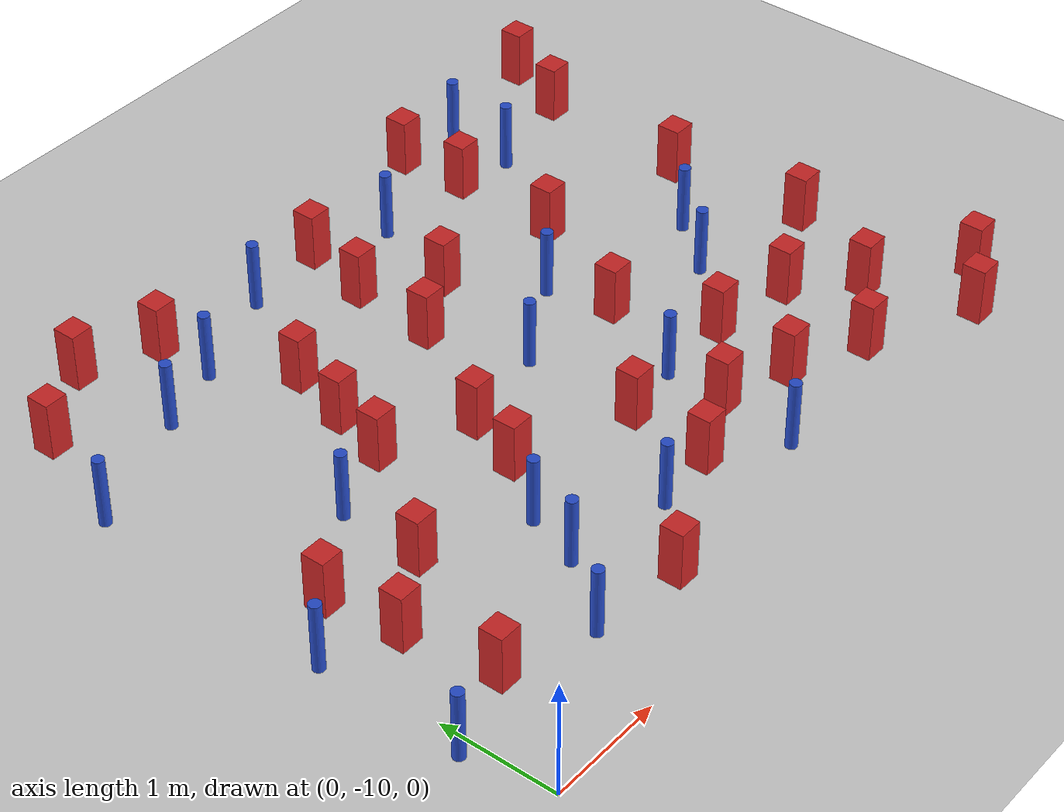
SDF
<sdf version="1.6">
 <world name="default">
  <model name="ground_plane">
   <static>1</static>
   <link name="link">
    <collision name="collision">
     <geometry><plane><normal>0 0 1</normal><size>100 100</size></plane></geometry>
     <surface><friction><ode><mu>100</mu><mu2>50</mu2></ode></friction></surface>
    </collision>
    <visual name="visual">
     <cast_shadows>0</cast_shadows>
     <geometry><plane><normal>0 0 1</normal><size>100 100</size></plane></geometry>
     <material>
      <ambient>1.0 1.0 1.0 1.0</ambient>
      <diffuse>0.8 0.8 0.8 1.0</diffuse>
      <specular>0.01 0.01 0.01 1.000000</specular>
     </material>
    </visual>
   </link>
  </model>
  <model name="pole_obstacle3">
   <static>true</static>
   <pose>3.8869717696 -8.00408965055 7.38925637345e-09 -8.47170692795e-08 1.24976764645e-08 -1.74513093041e-07</pose>
   <link name="link">
    <pose>0 0 0.3 0 -0 0</pose>
    <inertial>
     <mass>1</mass>
     <inertia><ixx>0.145833</ixx><ixy>0</ixy><ixz>0</ixz><iyy>0.145833</iyy><iyz>0</iyz><izz>0.125</izz></inertia>
    </inertial>
    <collision name="collision">
     <geometry><cylinder><radius>0.05</radius><length>.6</length></cylinder></geometry>
    </collision>
    <visual name="visual">
     <geometry><cylinder><radius>0.05</radius><length>.6</length></cylinder></geometry>
     <material>
      <script><name>Gazebo/Blue</name><uri>file://media/materials/scripts/gazebo.material</uri></script>
     </material>
    </visual>
   </link>
  </model>
  <model name="square_post_obstacle4">
   <static>true</static>
   <pose>3.07919721968 -6.26653733006 1.91545236811e-07 -7.35059704564e-06 1.12565212e-07 2.39332434364e-05</pose>
   <link name="link">
    <pose>0 0 0.25 0 -0 0</pose>
    <inertial>
     <mass>100</mass>
     <inertia>
      <ixx>0.166667</ixx>
      <ixy>0</ixy>
      <ixz>0</ixz>
      <iyy>0.166667</iyy>
      <iyz>0</iyz>
      <izz>0.166667</izz>
     </inertia>
    </inertial>
    <collision name="collision"><geometry><box><size>.2 .2 .5</size></box></geometry></collision>
    <visual name="visual">
     <geometry><box><size>.2 .2 .5</size></box></geometry>
     <material>
      <script><name>Gazebo/Red</name><uri>file://media/materials/scripts/gazebo.material</uri></script>
     </material>
    </visual>
   </link>
  </model>
  <model name="square_post_obstacle5">
   <static>true</static>
   <pose>6.44324664143 -4.46390891324 1.91545236811e-07 -7.35059704564e-06 1.12565212e-07 2.39332434364e-05</pose>
   <link name="link">
    <pose>0 0 0.25 0 -0 0</pose>
    <inertial>
     <mass>100</mass>
     <inertia>
      <ixx>0.166667</ixx>
      <ixy>0</ixy>
      <ixz>0</ixz>
      <iyy>0.166667</iyy>
      <iyz>0</iyz>
      <izz>0.166667</izz>
     </inertia>
    </inertial>
    <collision name="collision"><geometry><box><size>.2 .2 .5</size></box></geometry></collision>
    <visual name="visual">
     <geometry><box><size>.2 .2 .5</size></box></geometry>
     <material>
      <script><name>Gazebo/Red</name><uri>file://media/materials/scripts/gazebo.material</uri></script>
     </material>
    </visual>
   </link>
  </model>
  <model name="square_post_obstacle10">
   <static>true</static>
   <pose>2.29358282562 -7.76249303104 1.91545236811e-07 -7.35059704564e-06 1.12565212e-07 2.39332434364e-05</pose>
   <link name="link">
    <pose>0 0 0.25 0 -0 0</pose>
    <inertial>
     <mass>100</mass>
     <inertia>
      <ixx>0.166667</ixx>
      <ixy>0</ixy>
      <ixz>0</ixz>
      <iyy>0.166667</iyy>
      <iyz>0</iyz>
      <izz>0.166667</izz>
     </inertia>
    </inertial>
    <collision name="collision"><geometry><box><size>.2 .2 .5</size></box></geometry></collision>
    <visual name="visual">
     <geometry><box><size>.2 .2 .5</size></box></geometry>
     <material>
      <script><name>Gazebo/Red</name><uri>file://media/materials/scripts/gazebo.material</uri></script>
     </material>
    </visual>
   </link>
  </model>
  <model name="square_post_obstacle17">
   <static>true</static>
   <pose>6.01711211781 -9.42610110597 1.91545236811e-07 -7.35059704564e-06 1.12565212e-07 2.39332434364e-05</pose>
   <link name="link">
    <pose>0 0 0.25 0 -0 0</pose>
    <inertial>
     <mass>100</mass>
     <inertia>
      <ixx>0.166667</ixx>
      <ixy>0</ixy>
      <ixz>0</ixz>
      <iyy>0.166667</iyy>
      <iyz>0</iyz>
      <izz>0.166667</izz>
     </inertia>
    </inertial>
    <collision name="collision"><geometry><box><size>.2 .2 .5</size></box></geometry></collision>
    <visual name="visual">
     <geometry><box><size>.2 .2 .5</size></box></geometry>
     <material>
      <script><name>Gazebo/Red</name><uri>file://media/materials/scripts/gazebo.material</uri></script>
     </material>
    </visual>
   </link>
  </model>
  <model name="square_post_obstacle22">
   <static>true</static>
   <pose>4.79873285361 -5.18965610386 1.91545236811e-07 -7.35059704564e-06 1.12565212e-07 2.39332434364e-05</pose>
   <link name="link">
    <pose>0 0 0.25 0 -0 0</pose>
    <inertial>
     <mass>100</mass>
     <inertia>
      <ixx>0.166667</ixx>
      <ixy>0</ixy>
      <ixz>0</ixz>
      <iyy>0.166667</iyy>
      <iyz>0</iyz>
      <izz>0.166667</izz>
     </inertia>
    </inertial>
    <collision name="collision"><geometry><box><size>.2 .2 .5</size></box></geometry></collision>
    <visual name="visual">
     <geometry><box><size>.2 .2 .5</size></box></geometry>
     <material>
      <script><name>Gazebo/Red</name><uri>file://media/materials/scripts/gazebo.material</uri></script>
     </material>
    </visual>
   </link>
  </model>
  <model name="square_post_obstacle27">
   <static>true</static>
   <pose>4.55266092391 -7.9938036275 1.91545236811e-07 -7.35059704564e-06 1.12565212e-07 2.39332434364e-05</pose>
   <link name="link">
    <pose>0 0 0.25 0 -0 0</pose>
    <inertial>
     <mass>100</mass>
     <inertia>
      <ixx>0.166667</ixx>
      <ixy>0</ixy>
      <ixz>0</ixz>
      <iyy>0.166667</iyy>
      <iyz>0</iyz>
      <izz>0.166667</izz>
     </inertia>
    </inertial>
    <collision name="collision"><geometry><box><size>.2 .2 .5</size></box></geometry></collision>
    <visual name="visual">
     <geometry><box><size>.2 .2 .5</size></box></geometry>
     <material>
      <script><name>Gazebo/Red</name><uri>file://media/materials/scripts/gazebo.material</uri></script>
     </material>
    </visual>
   </link>
  </model>
  <model name="square_post_obstacle29">
   <static>true</static>
   <pose>6.48298378623 -9.11429246544 1.91545236811e-07 -7.35059704564e-06 1.12565212e-07 2.39332434364e-05</pose>
   <link name="link">
    <pose>0 0 0.25 0 -0 0</pose>
    <inertial>
     <mass>100</mass>
     <inertia>
      <ixx>0.166667</ixx>
      <ixy>0</ixy>
      <ixz>0</ixz>
      <iyy>0.166667</iyy>
      <iyz>0</iyz>
      <izz>0.166667</izz>
     </inertia>
    </inertial>
    <collision name="collision"><geometry><box><size>.2 .2 .5</size></box></geometry></collision>
    <visual name="visual">
     <geometry><box><size>.2 .2 .5</size></box></geometry>
     <material>
      <script><name>Gazebo/Red</name><uri>file://media/materials/scripts/gazebo.material</uri></script>
     </material>
    </visual>
   </link>
  </model>
  <model name="pole_obstacle20">
   <static>true</static>
   <pose>1.93945871821 -8.24258649022 7.38925637345e-09 -8.47170692798e-08 1.24976764881e-08 -1.74513093027e-07</pose>
   <link name="link">
    <pose>0 0 0.3 0 -0 0</pose>
    <inertial>
     <mass>1</mass>
     <inertia><ixx>0.145833</ixx><ixy>0</ixy><ixz>0</ixz><iyy>0.145833</iyy><iyz>0</iyz><izz>0.125</izz></inertia>
    </inertial>
    <collision name="collision">
     <geometry><cylinder><radius>0.05</radius><length>.6</length></cylinder></geometry>
    </collision>
    <visual name="visual">
     <geometry><cylinder><radius>0.05</radius><length>.6</length></cylinder></geometry>
     <material>
      <script><name>Gazebo/Blue</name><uri>file://media/materials/scripts/gazebo.material</uri></script>
     </material>
    </visual>
   </link>
  </model>
  <model name="pole_obstacle23">
   <static>true</static>
   <pose>5.51537465679 -6.94875715952 7.38925637345e-09 -8.47170692796e-08 1.24976764786e-08 -1.74513093032e-07</pose>
   <link name="link">
    <pose>0 0 0.3 0 -0 0</pose>
    <inertial>
     <mass>1</mass>
     <inertia><ixx>0.145833</ixx><ixy>0</ixy><ixz>0</ixz><iyy>0.145833</iyy><iyz>0</iyz><izz>0.125</izz></inertia>
    </inertial>
    <collision name="collision">
     <geometry><cylinder><radius>0.05</radius><length>.6</length></cylinder></geometry>
    </collision>
    <visual name="visual">
     <geometry><cylinder><radius>0.05</radius><length>.6</length></cylinder></geometry>
     <material>
      <script><name>Gazebo/Blue</name><uri>file://media/materials/scripts/gazebo.material</uri></script>
     </material>
    </visual>
   </link>
  </model>
  <model name="pole_obstacle27">
   <static>true</static>
   <pose>1.77050154977 -8.71821364549 7.38925637345e-09 -8.47170692798e-08 1.24976764881e-08 -1.74513093027e-07</pose>
   <link name="link">
    <pose>0 0 0.3 0 -0 0</pose>
    <inertial>
     <mass>1</mass>
     <inertia><ixx>0.145833</ixx><ixy>0</ixy><ixz>0</ixz><iyy>0.145833</iyy><iyz>0</iyz><izz>0.125</izz></inertia>
    </inertial>
    <collision name="collision">
     <geometry><cylinder><radius>0.05</radius><length>.6</length></cylinder></geometry>
    </collision>
    <visual name="visual">
     <geometry><cylinder><radius>0.05</radius><length>.6</length></cylinder></geometry>
     <material>
      <script><name>Gazebo/Blue</name><uri>file://media/materials/scripts/gazebo.material</uri></script>
     </material>
    </visual>
   </link>
  </model>
  <model name="pole_obstacle30">
   <static>true</static>
   <pose>5.12696875734 -7.40442507341 7.38925637345e-09 -8.47170692796e-08 1.24976764786e-08 -1.74513093032e-07</pose>
   <link name="link">
    <pose>0 0 0.3 0 -0 0</pose>
    <inertial>
     <mass>1</mass>
     <inertia><ixx>0.145833</ixx><ixy>0</ixy><ixz>0</ixz><iyy>0.145833</iyy><iyz>0</iyz><izz>0.125</izz></inertia>
    </inertial>
    <collision name="collision">
     <geometry><cylinder><radius>0.05</radius><length>.6</length></cylinder></geometry>
    </collision>
    <visual name="visual">
     <geometry><cylinder><radius>0.05</radius><length>.6</length></cylinder></geometry>
     <material>
      <script><name>Gazebo/Blue</name><uri>file://media/materials/scripts/gazebo.material</uri></script>
     </material>
    </visual>
   </link>
  </model>
  <model name="pole_obstacle41">
   <static>true</static>
   <pose>5.31933902041 -4.66655449276 7.38925637345e-09 -8.47170692796e-08 1.24976764786e-08 -1.74513093032e-07</pose>
   <link name="link">
    <pose>0 0 0.3 0 -0 0</pose>
    <inertial>
     <mass>1</mass>
     <inertia><ixx>0.145833</ixx><ixy>0</ixy><ixz>0</ixz><iyy>0.145833</iyy><iyz>0</iyz><izz>0.125</izz></inertia>
    </inertial>
    <collision name="collision">
     <geometry><cylinder><radius>0.05</radius><length>.6</length></cylinder></geometry>
    </collision>
    <visual name="visual">
     <geometry><cylinder><radius>0.05</radius><length>.6</length></cylinder></geometry>
     <material>
      <script><name>Gazebo/Blue</name><uri>file://media/materials/scripts/gazebo.material</uri></script>
     </material>
    </visual>
   </link>
  </model>
  <model name="square_post_obstacle42">
   <static>true</static>
   <pose>4.77084175462 -4.58332912913 1.91545236811e-07 -7.35059704564e-06 1.12565212e-07 2.39332434364e-05</pose>
   <link name="link">
    <pose>0 0 0.25 0 -0 0</pose>
    <inertial>
     <mass>100</mass>
     <inertia>
      <ixx>0.166667</ixx>
      <ixy>0</ixy>
      <ixz>0</ixz>
      <iyy>0.166667</iyy>
      <iyz>0</iyz>
      <izz>0.166667</izz>
     </inertia>
    </inertial>
    <collision name="collision"><geometry><box><size>.2 .2 .5</size></box></geometry></collision>
    <visual name="visual">
     <geometry><box><size>.2 .2 .5</size></box></geometry>
     <material>
      <script><name>Gazebo/Red</name><uri>file://media/materials/scripts/gazebo.material</uri></script>
     </material>
    </visual>
   </link>
  </model>
  <model name="square_post_obstacle45">
   <static>true</static>
   <pose>1.08597140205 -7.88172179054 1.91545236811e-07 -7.35059704564e-06 1.12565212e-07 2.39332434364e-05</pose>
   <link name="link">
    <pose>0 0 0.25 0 -0 0</pose>
    <inertial>
     <mass>100</mass>
     <inertia>
      <ixx>0.166667</ixx>
      <ixy>0</ixy>
      <ixz>0</ixz>
      <iyy>0.166667</iyy>
      <iyz>0</iyz>
      <izz>0.166667</izz>
     </inertia>
    </inertial>
    <collision name="collision"><geometry><box><size>.2 .2 .5</size></box></geometry></collision>
    <visual name="visual">
     <geometry><box><size>.2 .2 .5</size></box></geometry>
     <material>
      <script><name>Gazebo/Red</name><uri>file://media/materials/scripts/gazebo.material</uri></script>
     </material>
    </visual>
   </link>
  </model>
  <model name="square_post_obstacle48">
   <static>true</static>
   <pose>1.75514652168 -6.92476164074 1.91545236811e-07 -7.35059704564e-06 1.12565212e-07 2.39332434364e-05</pose>
   <link name="link">
    <pose>0 0 0.25 0 -0 0</pose>
    <inertial>
     <mass>100</mass>
     <inertia>
      <ixx>0.166667</ixx>
      <ixy>0</ixy>
      <ixz>0</ixz>
      <iyy>0.166667</iyy>
      <iyz>0</iyz>
      <izz>0.166667</izz>
     </inertia>
    </inertial>
    <collision name="collision"><geometry><box><size>.2 .2 .5</size></box></geometry></collision>
    <visual name="visual">
     <geometry><box><size>.2 .2 .5</size></box></geometry>
     <material>
      <script><name>Gazebo/Red</name><uri>file://media/materials/scripts/gazebo.material</uri></script>
     </material>
    </visual>
   </link>
  </model>
  <model name="pole_obstacle48">
   <static>true</static>
   <pose>2.67402947778 -8.8718139059 7.38925637345e-09 -8.47170692793e-08 1.24976764408e-08 -1.74513093041e-07</pose>
   <link name="link">
    <pose>0 0 0.3 0 -0 0</pose>
    <inertial>
     <mass>1</mass>
     <inertia><ixx>0.145833</ixx><ixy>0</ixy><ixz>0</ixz><iyy>0.145833</iyy><iyz>0</iyz><izz>0.125</izz></inertia>
    </inertial>
    <collision name="collision">
     <geometry><cylinder><radius>0.05</radius><length>.6</length></cylinder></geometry>
    </collision>
    <visual name="visual">
     <geometry><cylinder><radius>0.05</radius><length>.6</length></cylinder></geometry>
     <material>
      <script><name>Gazebo/Blue</name><uri>file://media/materials/scripts/gazebo.material</uri></script>
     </material>
    </visual>
   </link>
  </model>
  <model name="square_post_obstacle60">
   <static>true</static>
   <pose>3.67688476668 -5.931533268 1.91545236811e-07 -7.35059704564e-06 1.12565212e-07 2.39332434364e-05</pose>
   <link name="link">
    <pose>0 0 0.25 0 -0 0</pose>
    <inertial>
     <mass>100</mass>
     <inertia>
      <ixx>0.166667</ixx>
      <ixy>0</ixy>
      <ixz>0</ixz>
      <iyy>0.166667</iyy>
      <iyz>0</iyz>
      <izz>0.166667</izz>
     </inertia>
    </inertial>
    <collision name="collision"><geometry><box><size>.2 .2 .5</size></box></geometry></collision>
    <visual name="visual">
     <geometry><box><size>.2 .2 .5</size></box></geometry>
     <material>
      <script><name>Gazebo/Red</name><uri>file://media/materials/scripts/gazebo.material</uri></script>
     </material>
    </visual>
   </link>
  </model>
  <model name="pole_obstacle56">
   <static>true</static>
   <pose>3.79255109052 -9.2062364247 7.38925637345e-09 -8.47170692793e-08 1.24976764408e-08 -1.74513093041e-07</pose>
   <link name="link">
    <pose>0 0 0.3 0 -0 0</pose>
    <inertial>
     <mass>1</mass>
     <inertia><ixx>0.145833</ixx><ixy>0</ixy><ixz>0</ixz><iyy>0.145833</iyy><iyz>0</iyz><izz>0.125</izz></inertia>
    </inertial>
    <collision name="collision">
     <geometry><cylinder><radius>0.05</radius><length>.6</length></cylinder></geometry>
    </collision>
    <visual name="visual">
     <geometry><cylinder><radius>0.05</radius><length>.6</length></cylinder></geometry>
     <material>
      <script><name>Gazebo/Blue</name><uri>file://media/materials/scripts/gazebo.material</uri></script>
     </material>
    </visual>
   </link>
  </model>
  <model name="pole_obstacle64">
   <static>true</static>
   <pose>2.56649638465 -4.94191899076 7.38925637345e-09 -8.47170692798e-08 1.24976765033e-08 -1.74513093019e-07</pose>
   <link name="link">
    <pose>0 0 0.3 0 -0 0</pose>
    <inertial>
     <mass>1</mass>
     <inertia><ixx>0.145833</ixx><ixy>0</ixy><ixz>0</ixz><iyy>0.145833</iyy><iyz>0</iyz><izz>0.125</izz></inertia>
    </inertial>
    <collision name="collision">
     <geometry><cylinder><radius>0.05</radius><length>.6</length></cylinder></geometry>
    </collision>
    <visual name="visual">
     <geometry><cylinder><radius>0.05</radius><length>.6</length></cylinder></geometry>
     <material>
      <script><name>Gazebo/Blue</name><uri>file://media/materials/scripts/gazebo.material</uri></script>
     </material>
    </visual>
   </link>
  </model>
  <model name="square_post_obstacle69">
   <static>true</static>
   <pose>1.67292265116 -4.77146526882 1.91545236811e-07 -7.35059704564e-06 1.12565212e-07 2.39332434364e-05</pose>
   <link name="link">
    <pose>0 0 0.25 0 -0 0</pose>
    <inertial>
     <mass>100</mass>
     <inertia>
      <ixx>0.166667</ixx>
      <ixy>0</ixy>
      <ixz>0</ixz>
      <iyy>0.166667</iyy>
      <iyz>0</iyz>
      <izz>0.166667</izz>
     </inertia>
    </inertial>
    <collision name="collision"><geometry><box><size>.2 .2 .5</size></box></geometry></collision>
    <visual name="visual">
     <geometry><box><size>.2 .2 .5</size></box></geometry>
     <material>
      <script><name>Gazebo/Red</name><uri>file://media/materials/scripts/gazebo.material</uri></script>
     </material>
    </visual>
   </link>
  </model>
  <model name="pole_obstacle70">
   <static>true</static>
   <pose>4.12975500919 -6.62695395153 7.38925637345e-09 -8.47170692796e-08 1.24976764786e-08 -1.74513093032e-07</pose>
   <link name="link">
    <pose>0 0 0.3 0 -0 0</pose>
    <inertial>
     <mass>1</mass>
     <inertia><ixx>0.145833</ixx><ixy>0</ixy><ixz>0</ixz><iyy>0.145833</iyy><iyz>0</iyz><izz>0.125</izz></inertia>
    </inertial>
    <collision name="collision">
     <geometry><cylinder><radius>0.05</radius><length>.6</length></cylinder></geometry>
    </collision>
    <visual name="visual">
     <geometry><cylinder><radius>0.05</radius><length>.6</length></cylinder></geometry>
     <material>
      <script><name>Gazebo/Blue</name><uri>file://media/materials/scripts/gazebo.material</uri></script>
     </material>
    </visual>
   </link>
  </model>
  <model name="pole_obstacle72">
   <static>true</static>
   <pose>5.31551510618 -5.24906580872 7.38925637345e-09 -8.47170692796e-08 1.24976764786e-08 -1.74513093032e-07</pose>
   <link name="link">
    <pose>0 0 0.3 0 -0 0</pose>
    <inertial>
     <mass>1</mass>
     <inertia><ixx>0.145833</ixx><ixy>0</ixy><ixz>0</ixz><iyy>0.145833</iyy><iyz>0</iyz><izz>0.125</izz></inertia>
    </inertial>
    <collision name="collision">
     <geometry><cylinder><radius>0.05</radius><length>.6</length></cylinder></geometry>
    </collision>
    <visual name="visual">
     <geometry><cylinder><radius>0.05</radius><length>.6</length></cylinder></geometry>
     <material>
      <script><name>Gazebo/Blue</name><uri>file://media/materials/scripts/gazebo.material</uri></script>
     </material>
    </visual>
   </link>
  </model>
  <model name="pole_obstacle74">
   <static>true</static>
   <pose>3.34582866779 -7.08030157012 7.38925637345e-09 -8.47170692798e-08 1.24976765033e-08 -1.74513093019e-07</pose>
   <link name="link">
    <pose>0 0 0.3 0 -0 0</pose>
    <inertial>
     <mass>1</mass>
     <inertia><ixx>0.145833</ixx><ixy>0</ixy><ixz>0</ixz><iyy>0.145833</iyy><iyz>0</iyz><izz>0.125</izz></inertia>
    </inertial>
    <collision name="collision">
     <geometry><cylinder><radius>0.05</radius><length>.6</length></cylinder></geometry>
    </collision>
    <visual name="visual">
     <geometry><cylinder><radius>0.05</radius><length>.6</length></cylinder></geometry>
     <material>
      <script><name>Gazebo/Blue</name><uri>file://media/materials/scripts/gazebo.material</uri></script>
     </material>
    </visual>
   </link>
  </model>
  <model name="pole_obstacle75">
   <static>true</static>
   <pose>1.13440905751 -7.14215803802 7.38925637345e-09 -8.47170692799e-08 1.24976765033e-08 -1.74513093018e-07</pose>
   <link name="link">
    <pose>0 0 0.3 0 -0 0</pose>
    <inertial>
     <mass>1</mass>
     <inertia><ixx>0.145833</ixx><ixy>0</ixy><ixz>0</ixz><iyy>0.145833</iyy><iyz>0</iyz><izz>0.125</izz></inertia>
    </inertial>
    <collision name="collision">
     <geometry><cylinder><radius>0.05</radius><length>.6</length></cylinder></geometry>
    </collision>
    <visual name="visual">
     <geometry><cylinder><radius>0.05</radius><length>.6</length></cylinder></geometry>
     <material>
      <script><name>Gazebo/Blue</name><uri>file://media/materials/scripts/gazebo.material</uri></script>
     </material>
    </visual>
   </link>
  </model>
  <model name="pole_obstacle83">
   <static>true</static>
   <pose>3.93082689863 -5.12274854073 7.38925637345e-09 -8.47170692798e-08 1.24976765033e-08 -1.74513093019e-07</pose>
   <link name="link">
    <pose>0 0 0.3 0 -0 0</pose>
    <inertial>
     <mass>1</mass>
     <inertia><ixx>0.145833</ixx><ixy>0</ixy><ixz>0</ixz><iyy>0.145833</iyy><iyz>0</iyz><izz>0.125</izz></inertia>
    </inertial>
    <collision name="collision">
     <geometry><cylinder><radius>0.05</radius><length>.6</length></cylinder></geometry>
    </collision>
    <visual name="visual">
     <geometry><cylinder><radius>0.05</radius><length>.6</length></cylinder></geometry>
     <material>
      <script><name>Gazebo/Blue</name><uri>file://media/materials/scripts/gazebo.material</uri></script>
     </material>
    </visual>
   </link>
  </model>
  <model name="pole_obstacle92">
   <static>true</static>
   <pose>0.0189825552733 -5.85464212197 7.38925637345e-09 -8.471706928e-08 1.24976765089e-08 -1.74513093016e-07</pose>
   <link name="link">
    <pose>0 0 0.3 0 -0 0</pose>
    <inertial>
     <mass>1</mass>
     <inertia><ixx>0.145833</ixx><ixy>0</ixy><ixz>0</ixz><iyy>0.145833</iyy><iyz>0</iyz><izz>0.125</izz></inertia>
    </inertial>
    <collision name="collision">
     <geometry><cylinder><radius>0.05</radius><length>.6</length></cylinder></geometry>
    </collision>
    <visual name="visual">
     <geometry><cylinder><radius>0.05</radius><length>.6</length></cylinder></geometry>
     <material>
      <script><name>Gazebo/Blue</name><uri>file://media/materials/scripts/gazebo.material</uri></script>
     </material>
    </visual>
   </link>
  </model>
  <model name="square_post_obstacle88">
   <static>true</static>
   <pose>4.76073305607 -6.1354554053 1.91545236811e-07 -7.35059704564e-06 1.12565212e-07 2.39332434364e-05</pose>
   <link name="link">
    <pose>0 0 0.25 0 -0 0</pose>
    <inertial>
     <mass>100</mass>
     <inertia>
      <ixx>0.166667</ixx>
      <ixy>0</ixy>
      <ixz>0</ixz>
      <iyy>0.166667</iyy>
      <iyz>0</iyz>
      <izz>0.166667</izz>
     </inertia>
    </inertial>
    <collision name="collision"><geometry><box><size>.2 .2 .5</size></box></geometry></collision>
    <visual name="visual">
     <geometry><box><size>.2 .2 .5</size></box></geometry>
     <material>
      <script><name>Gazebo/Red</name><uri>file://media/materials/scripts/gazebo.material</uri></script>
     </material>
    </visual>
   </link>
  </model>
  <model name="pole_obstacle109">
   <static>true</static>
   <pose>-0.142745094551 -9.28714269157 7.38925637345e-09 -8.47170692797e-08 1.249767648e-08 -1.74513093033e-07</pose>
   <link name="link">
    <pose>0 0 0.3 0 -0 0</pose>
    <inertial>
     <mass>1</mass>
     <inertia><ixx>0.145833</ixx><ixy>0</ixy><ixz>0</ixz><iyy>0.145833</iyy><iyz>0</iyz><izz>0.125</izz></inertia>
    </inertial>
    <collision name="collision">
     <geometry><cylinder><radius>0.05</radius><length>.6</length></cylinder></geometry>
    </collision>
    <visual name="visual">
     <geometry><cylinder><radius>0.05</radius><length>.6</length></cylinder></geometry>
     <material>
      <script><name>Gazebo/Blue</name><uri>file://media/materials/scripts/gazebo.material</uri></script>
     </material>
    </visual>
   </link>
  </model>
  <model name="pole_obstacle129">
   <static>true</static>
   <pose>-0.113783432798 -8.0323028779 7.38925637345e-09 -8.47170692807e-08 1.24976765528e-08 -1.74513093002e-07</pose>
   <link name="link">
    <pose>0 0 0.3 0 -0 0</pose>
    <inertial>
     <mass>1</mass>
     <inertia><ixx>0.145833</ixx><ixy>0</ixy><ixz>0</ixz><iyy>0.145833</iyy><iyz>0</iyz><izz>0.125</izz></inertia>
    </inertial>
    <collision name="collision">
     <geometry><cylinder><radius>0.05</radius><length>.6</length></cylinder></geometry>
    </collision>
    <visual name="visual">
     <geometry><cylinder><radius>0.05</radius><length>.6</length></cylinder></geometry>
     <material>
      <script><name>Gazebo/Blue</name><uri>file://media/materials/scripts/gazebo.material</uri></script>
     </material>
    </visual>
   </link>
  </model>
  <model name="square_post_obstacle114">
   <static>true</static>
   <pose>5.2841470193 -8.11014872545 1.91545236811e-07 -7.35059704564e-06 1.12565212e-07 2.39332434364e-05</pose>
   <link name="link">
    <pose>0 0 0.25 0 -0 0</pose>
    <inertial>
     <mass>100</mass>
     <inertia>
      <ixx>0.166667</ixx>
      <ixy>0</ixy>
      <ixz>0</ixz>
      <iyy>0.166667</iyy>
      <iyz>0</iyz>
      <izz>0.166667</izz>
     </inertia>
    </inertial>
    <collision name="collision"><geometry><box><size>.2 .2 .5</size></box></geometry></collision>
    <visual name="visual">
     <geometry><box><size>.2 .2 .5</size></box></geometry>
     <material>
      <script><name>Gazebo/Red</name><uri>file://media/materials/scripts/gazebo.material</uri></script>
     </material>
    </visual>
   </link>
  </model>
  <model name="pole_obstacle135">
   <static>true</static>
   <pose>1.08419162479 -5.46342337874 7.38925637345e-09 -8.47170692799e-08 1.24976765033e-08 -1.74513093018e-07</pose>
   <link name="link">
    <pose>0 0 0.3 0 -0 0</pose>
    <inertial>
     <mass>1</mass>
     <inertia><ixx>0.145833</ixx><ixy>0</ixy><ixz>0</ixz><iyy>0.145833</iyy><iyz>0</iyz><izz>0.125</izz></inertia>
    </inertial>
    <collision name="collision">
     <geometry><cylinder><radius>0.05</radius><length>.6</length></cylinder></geometry>
    </collision>
    <visual name="visual">
     <geometry><cylinder><radius>0.05</radius><length>.6</length></cylinder></geometry>
     <material>
      <script><name>Gazebo/Blue</name><uri>file://media/materials/scripts/gazebo.material</uri></script>
     </material>
    </visual>
   </link>
  </model>
  <model name="square_post_obstacle118">
   <static>true</static>
   <pose>6.0964855057 -6.42847833905 1.91545236811e-07 -7.35059704564e-06 1.12565212e-07 2.39332434364e-05</pose>
   <link name="link">
    <pose>0 0 0.25 0 -0 0</pose>
    <inertial>
     <mass>100</mass>
     <inertia>
      <ixx>0.166667</ixx>
      <ixy>0</ixy>
      <ixz>0</ixz>
      <iyy>0.166667</iyy>
      <iyz>0</iyz>
      <izz>0.166667</izz>
     </inertia>
    </inertial>
    <collision name="collision"><geometry><box><size>.2 .2 .5</size></box></geometry></collision>
    <visual name="visual">
     <geometry><box><size>.2 .2 .5</size></box></geometry>
     <material>
      <script><name>Gazebo/Red</name><uri>file://media/materials/scripts/gazebo.material</uri></script>
     </material>
    </visual>
   </link>
  </model>
  <model name="square_post_obstacle135">
   <static>true</static>
   <pose>0.56624380071 -9.05491118598 1.91545236811e-07 -7.35059704564e-06 1.12565212e-07 2.39332434364e-05</pose>
   <link name="link">
    <pose>0 0 0.25 0 -0 0</pose>
    <inertial>
     <mass>100</mass>
     <inertia>
      <ixx>0.166667</ixx>
      <ixy>0</ixy>
      <ixz>0</ixz>
      <iyy>0.166667</iyy>
      <iyz>0</iyz>
      <izz>0.166667</izz>
     </inertia>
    </inertial>
    <collision name="collision"><geometry><box><size>.2 .2 .5</size></box></geometry></collision>
    <visual name="visual">
     <geometry><box><size>.2 .2 .5</size></box></geometry>
     <material>
      <script><name>Gazebo/Red</name><uri>file://media/materials/scripts/gazebo.material</uri></script>
     </material>
    </visual>
   </link>
  </model>
  <model name="square_post_obstacle139">
   <static>true</static>
   <pose>5.74500657014 -8.55631629044 1.91545236811e-07 -7.35059704564e-06 1.12565212e-07 2.39332434364e-05</pose>
   <link name="link">
    <pose>0 0 0.25 0 -0 0</pose>
    <inertial>
     <mass>100</mass>
     <inertia>
      <ixx>0.166667</ixx>
      <ixy>0</ixy>
      <ixz>0</ixz>
      <iyy>0.166667</iyy>
      <iyz>0</iyz>
      <izz>0.166667</izz>
     </inertia>
    </inertial>
    <collision name="collision"><geometry><box><size>.2 .2 .5</size></box></geometry></collision>
    <visual name="visual">
     <geometry><box><size>.2 .2 .5</size></box></geometry>
     <material>
      <script><name>Gazebo/Red</name><uri>file://media/materials/scripts/gazebo.material</uri></script>
     </material>
    </visual>
   </link>
  </model>
  <model name="square_post_obstacle144">
   <static>true</static>
   <pose>3.22861320946 -8.81806669082 1.91545236811e-07 -7.35059704564e-06 1.12565212e-07 2.39332434364e-05</pose>
   <link name="link">
    <pose>0 0 0.25 0 -0 0</pose>
    <inertial>
     <mass>100</mass>
     <inertia>
      <ixx>0.166667</ixx>
      <ixy>0</ixy>
      <ixz>0</ixz>
      <iyy>0.166667</iyy>
      <iyz>0</iyz>
      <izz>0.166667</izz>
     </inertia>
    </inertial>
    <collision name="collision"><geometry><box><size>.2 .2 .5</size></box></geometry></collision>
    <visual name="visual">
     <geometry><box><size>.2 .2 .5</size></box></geometry>
     <material>
      <script><name>Gazebo/Red</name><uri>file://media/materials/scripts/gazebo.material</uri></script>
     </material>
    </visual>
   </link>
  </model>
  <model name="square_post_obstacle147">
   <static>true</static>
   <pose>1.89636370128 -6.42562652642 1.91545236811e-07 -7.35059704564e-06 1.12565212e-07 2.39332434364e-05</pose>
   <link name="link">
    <pose>0 0 0.25 0 -0 0</pose>
    <inertial>
     <mass>100</mass>
     <inertia>
      <ixx>0.166667</ixx>
      <ixy>0</ixy>
      <ixz>0</ixz>
      <iyy>0.166667</iyy>
      <iyz>0</iyz>
      <izz>0.166667</izz>
     </inertia>
    </inertial>
    <collision name="collision"><geometry><box><size>.2 .2 .5</size></box></geometry></collision>
    <visual name="visual">
     <geometry><box><size>.2 .2 .5</size></box></geometry>
     <material>
      <script><name>Gazebo/Red</name><uri>file://media/materials/scripts/gazebo.material</uri></script>
     </material>
    </visual>
   </link>
  </model>
  <model name="square_post_obstacle151">
   <static>true</static>
   <pose>2.06729605745 -5.86654551124 1.91545236811e-07 -7.35059704564e-06 1.12565212e-07 2.39332434364e-05</pose>
   <link name="link">
    <pose>0 0 0.25 0 -0 0</pose>
    <inertial>
     <mass>100</mass>
     <inertia>
      <ixx>0.166667</ixx>
      <ixy>0</ixy>
      <ixz>0</ixz>
      <iyy>0.166667</iyy>
      <iyz>0</iyz>
      <izz>0.166667</izz>
     </inertia>
    </inertial>
    <collision name="collision"><geometry><box><size>.2 .2 .5</size></box></geometry></collision>
    <visual name="visual">
     <geometry><box><size>.2 .2 .5</size></box></geometry>
     <material>
      <script><name>Gazebo/Red</name><uri>file://media/materials/scripts/gazebo.material</uri></script>
     </material>
    </visual>
   </link>
  </model>
  <model name="square_post_obstacle152">
   <static>true</static>
   <pose>5.09725776475 -9.00364261768 1.91545236811e-07 -7.35059704564e-06 1.12565212e-07 2.39332434364e-05</pose>
   <link name="link">
    <pose>0 0 0.25 0 -0 0</pose>
    <inertial>
     <mass>100</mass>
     <inertia>
      <ixx>0.166667</ixx>
      <ixy>0</ixy>
      <ixz>0</ixz>
      <iyy>0.166667</iyy>
      <iyz>0</iyz>
      <izz>0.166667</izz>
     </inertia>
    </inertial>
    <collision name="collision"><geometry><box><size>.2 .2 .5</size></box></geometry></collision>
    <visual name="visual">
     <geometry><box><size>.2 .2 .5</size></box></geometry>
     <material>
      <script><name>Gazebo/Red</name><uri>file://media/materials/scripts/gazebo.material</uri></script>
     </material>
    </visual>
   </link>
  </model>
  <model name="square_post_obstacle157">
   <static>true</static>
   <pose>0.363027698717 -4.9575451648 1.91545236811e-07 -7.35059704564e-06 1.12565212e-07 2.39332434364e-05</pose>
   <link name="link">
    <pose>0 0 0.25 0 -0 0</pose>
    <inertial>
     <mass>100</mass>
     <inertia>
      <ixx>0.166667</ixx>
      <ixy>0</ixy>
      <ixz>0</ixz>
      <iyy>0.166667</iyy>
      <iyz>0</iyz>
      <izz>0.166667</izz>
     </inertia>
    </inertial>
    <collision name="collision"><geometry><box><size>.2 .2 .5</size></box></geometry></collision>
    <visual name="visual">
     <geometry><box><size>.2 .2 .5</size></box></geometry>
     <material>
      <script><name>Gazebo/Red</name><uri>file://media/materials/scripts/gazebo.material</uri></script>
     </material>
    </visual>
   </link>
  </model>
  <model name="square_post_obstacle159">
   <static>true</static>
   <pose>4.23735094951 -7.19478302768 1.91545236811e-07 -7.35059704564e-06 1.12565212e-07 2.39332434364e-05</pose>
   <link name="link">
    <pose>0 0 0.25 0 -0 0</pose>
    <inertial>
     <mass>100</mass>
     <inertia>
      <ixx>0.166667</ixx>
      <ixy>0</ixy>
      <ixz>0</ixz>
      <iyy>0.166667</iyy>
      <iyz>0</iyz>
      <izz>0.166667</izz>
     </inertia>
    </inertial>
    <collision name="collision"><geometry><box><size>.2 .2 .5</size></box></geometry></collision>
    <visual name="visual">
     <geometry><box><size>.2 .2 .5</size></box></geometry>
     <material>
      <script><name>Gazebo/Red</name><uri>file://media/materials/scripts/gazebo.material</uri></script>
     </material>
    </visual>
   </link>
  </model>
  <model name="pole_obstacle173">
   <static>true</static>
   <pose>1.32365850716 -9.29013179709 7.38925637345e-09 -8.47170692798e-08 1.24976764881e-08 -1.74513093027e-07</pose>
   <link name="link">
    <pose>0 0 0.3 0 -0 0</pose>
    <inertial>
     <mass>1</mass>
     <inertia><ixx>0.145833</ixx><ixy>0</ixy><ixz>0</ixz><iyy>0.145833</iyy><iyz>0</iyz><izz>0.125</izz></inertia>
    </inertial>
    <collision name="collision">
     <geometry><cylinder><radius>0.05</radius><length>.6</length></cylinder></geometry>
    </collision>
    <visual name="visual">
     <geometry><cylinder><radius>0.05</radius><length>.6</length></cylinder></geometry>
     <material>
      <script><name>Gazebo/Blue</name><uri>file://media/materials/scripts/gazebo.material</uri></script>
     </material>
    </visual>
   </link>
  </model>
  <model name="pole_obstacle174">
   <static>true</static>
   <pose>1.68412948487 -5.27470686964 7.38925637345e-09 -8.47170692799e-08 1.24976765033e-08 -1.74513093018e-07</pose>
   <link name="link">
    <pose>0 0 0.3 0 -0 0</pose>
    <inertial>
     <mass>1</mass>
     <inertia><ixx>0.145833</ixx><ixy>0</ixy><ixz>0</ixz><iyy>0.145833</iyy><iyz>0</iyz><izz>0.125</izz></inertia>
    </inertial>
    <collision name="collision">
     <geometry><cylinder><radius>0.05</radius><length>.6</length></cylinder></geometry>
    </collision>
    <visual name="visual">
     <geometry><cylinder><radius>0.05</radius><length>.6</length></cylinder></geometry>
     <material>
      <script><name>Gazebo/Blue</name><uri>file://media/materials/scripts/gazebo.material</uri></script>
     </material>
    </visual>
   </link>
  </model>
  <model name="square_post_obstacle166">
   <static>true</static>
   <pose>0.441307235547 -8.29020873364 1.91545236811e-07 -7.35059704564e-06 1.12565212e-07 2.39332434364e-05</pose>
   <link name="link">
    <pose>0 0 0.25 0 -0 0</pose>
    <inertial>
     <mass>100</mass>
     <inertia>
      <ixx>0.166667</ixx>
      <ixy>0</ixy>
      <ixz>0</ixz>
      <iyy>0.166667</iyy>
      <iyz>0</iyz>
      <izz>0.166667</izz>
     </inertia>
    </inertial>
    <collision name="collision"><geometry><box><size>.2 .2 .5</size></box></geometry></collision>
    <visual name="visual">
     <geometry><box><size>.2 .2 .5</size></box></geometry>
     <material>
      <script><name>Gazebo/Red</name><uri>file://media/materials/scripts/gazebo.material</uri></script>
     </material>
    </visual>
   </link>
  </model>
  <model name="square_post_obstacle186">
   <static>true</static>
   <pose>2.12640314736 -9.38636431572 1.91545236811e-07 -7.35059704564e-06 1.12565212e-07 2.39332434364e-05</pose>
   <link name="link">
    <pose>0 0 0.25 0 -0 0</pose>
    <inertial>
     <mass>100</mass>
     <inertia>
      <ixx>0.166667</ixx>
      <ixy>0</ixy>
      <ixz>0</ixz>
      <iyy>0.166667</iyy>
      <iyz>0</iyz>
      <izz>0.166667</izz>
     </inertia>
    </inertial>
    <collision name="collision"><geometry><box><size>.2 .2 .5</size></box></geometry></collision>
    <visual name="visual">
     <geometry><box><size>.2 .2 .5</size></box></geometry>
     <material>
      <script><name>Gazebo/Red</name><uri>file://media/materials/scripts/gazebo.material</uri></script>
     </material>
    </visual>
   </link>
  </model>
  <model name="square_post_obstacle197">
   <static>true</static>
   <pose>6.19393115188 -5.04699390556 1.91545236811e-07 -7.35059704564e-06 1.12565212e-07 2.39332434364e-05</pose>
   <link name="link">
    <pose>0 0 0.25 0 -0 0</pose>
    <inertial>
     <mass>100</mass>
     <inertia>
      <ixx>0.166667</ixx>
      <ixy>0</ixy>
      <ixz>0</ixz>
      <iyy>0.166667</iyy>
      <iyz>0</iyz>
      <izz>0.166667</izz>
     </inertia>
    </inertial>
    <collision name="collision"><geometry><box><size>.2 .2 .5</size></box></geometry></collision>
    <visual name="visual">
     <geometry><box><size>.2 .2 .5</size></box></geometry>
     <material>
      <script><name>Gazebo/Red</name><uri>file://media/materials/scripts/gazebo.material</uri></script>
     </material>
    </visual>
   </link>
  </model>
  <model name="square_post_obstacle198">
   <static>true</static>
   <pose>1.04266074139 -4.52198210974 1.91545236811e-07 -7.35059704564e-06 1.12565212e-07 2.39332434364e-05</pose>
   <link name="link">
    <pose>0 0 0.25 0 -0 0</pose>
    <inertial>
     <mass>100</mass>
     <inertia>
      <ixx>0.166667</ixx>
      <ixy>0</ixy>
      <ixz>0</ixz>
      <iyy>0.166667</iyy>
      <iyz>0</iyz>
      <izz>0.166667</izz>
     </inertia>
    </inertial>
    <collision name="collision"><geometry><box><size>.2 .2 .5</size></box></geometry></collision>
    <visual name="visual">
     <geometry><box><size>.2 .2 .5</size></box></geometry>
     <material>
      <script><name>Gazebo/Red</name><uri>file://media/materials/scripts/gazebo.material</uri></script>
     </material>
    </visual>
   </link>
  </model>
  <model name="square_post_obstacle199">
   <static>true</static>
   <pose>3.1461844781 -5.51284872106 1.91545236811e-07 -7.35059704564e-06 1.12565212e-07 2.39332434364e-05</pose>
   <link name="link">
    <pose>0 0 0.25 0 -0 0</pose>
    <inertial>
     <mass>100</mass>
     <inertia>
      <ixx>0.166667</ixx>
      <ixy>0</ixy>
      <ixz>0</ixz>
      <iyy>0.166667</iyy>
      <iyz>0</iyz>
      <izz>0.166667</izz>
     </inertia>
    </inertial>
    <collision name="collision"><geometry><box><size>.2 .2 .5</size></box></geometry></collision>
    <visual name="visual">
     <geometry><box><size>.2 .2 .5</size></box></geometry>
     <material>
      <script><name>Gazebo/Red</name><uri>file://media/materials/scripts/gazebo.material</uri></script>
     </material>
    </visual>
   </link>
  </model>
  <model name="square_post_obstacle200">
   <static>true</static>
   <pose>6.18225658644 -7.64781982012 1.91545236811e-07 -7.35059704564e-06 1.12565212e-07 2.39332434364e-05</pose>
   <link name="link">
    <pose>0 0 0.25 0 -0 0</pose>
    <inertial>
     <mass>100</mass>
     <inertia>
      <ixx>0.166667</ixx>
      <ixy>0</ixy>
      <ixz>0</ixz>
      <iyy>0.166667</iyy>
      <iyz>0</iyz>
      <izz>0.166667</izz>
     </inertia>
    </inertial>
    <collision name="collision"><geometry><box><size>.2 .2 .5</size></box></geometry></collision>
    <visual name="visual">
     <geometry><box><size>.2 .2 .5</size></box></geometry>
     <material>
      <script><name>Gazebo/Red</name><uri>file://media/materials/scripts/gazebo.material</uri></script>
     </material>
    </visual>
   </link>
  </model>
  <model name="square_post_obstacle201">
   <static>true</static>
   <pose>3.30883533184 -8.10768754472 1.91545236811e-07 -7.35059704564e-06 1.12565212e-07 2.39332434364e-05</pose>
   <link name="link">
    <pose>0 0 0.25 0 -0 0</pose>
    <inertial>
     <mass>100</mass>
     <inertia>
      <ixx>0.166667</ixx>
      <ixy>0</ixy>
      <ixz>0</ixz>
      <iyy>0.166667</iyy>
      <iyz>0</iyz>
      <izz>0.166667</izz>
     </inertia>
    </inertial>
    <collision name="collision"><geometry><box><size>.2 .2 .5</size></box></geometry></collision>
    <visual name="visual">
     <geometry><box><size>.2 .2 .5</size></box></geometry>
     <material>
      <script><name>Gazebo/Red</name><uri>file://media/materials/scripts/gazebo.material</uri></script>
     </material>
    </visual>
   </link>
  </model>
  <model name="square_post_obstacle211">
   <static>true</static>
   <pose>3.85846353047 -8.5316626894 1.91545236811e-07 -7.35059704564e-06 1.12565212e-07 2.39332434364e-05</pose>
   <link name="link">
    <pose>0 0 0.25 0 -0 0</pose>
    <inertial>
     <mass>100</mass>
     <inertia>
      <ixx>0.166667</ixx>
      <ixy>0</ixy>
      <ixz>0</ixz>
      <iyy>0.166667</iyy>
      <iyz>0</iyz>
      <izz>0.166667</izz>
     </inertia>
    </inertial>
    <collision name="collision"><geometry><box><size>.2 .2 .5</size></box></geometry></collision>
    <visual name="visual">
     <geometry><box><size>.2 .2 .5</size></box></geometry>
     <material>
      <script><name>Gazebo/Red</name><uri>file://media/materials/scripts/gazebo.material</uri></script>
     </material>
    </visual>
   </link>
  </model>
  <model name="square_post_obstacle214">
   <static>true</static>
   <pose>0.366445386195 -7.65203848526 1.91545236811e-07 -7.35059704564e-06 1.12565212e-07 2.39332434364e-05</pose>
   <link name="link">
    <pose>0 0 0.25 0 -0 0</pose>
    <inertial>
     <mass>100</mass>
     <inertia>
      <ixx>0.166667</ixx>
      <ixy>0</ixy>
      <ixz>0</ixz>
      <iyy>0.166667</iyy>
      <iyz>0</iyz>
      <izz>0.166667</izz>
     </inertia>
    </inertial>
    <collision name="collision"><geometry><box><size>.2 .2 .5</size></box></geometry></collision>
    <visual name="visual">
     <geometry><box><size>.2 .2 .5</size></box></geometry>
     <material>
      <script><name>Gazebo/Red</name><uri>file://media/materials/scripts/gazebo.material</uri></script>
     </material>
    </visual>
   </link>
  </model>
  <model name="square_post_obstacle217">
   <static>true</static>
   <pose>2.48261126911 -7.25401292041 1.91545236811e-07 -7.35059704564e-06 1.12565212e-07 2.39332434364e-05</pose>
   <link name="link">
    <pose>0 0 0.25 0 -0 0</pose>
    <inertial>
     <mass>100</mass>
     <inertia>
      <ixx>0.166667</ixx>
      <ixy>0</ixy>
      <ixz>0</ixz>
      <iyy>0.166667</iyy>
      <iyz>0</iyz>
      <izz>0.166667</izz>
     </inertia>
    </inertial>
    <collision name="collision"><geometry><box><size>.2 .2 .5</size></box></geometry></collision>
    <visual name="visual">
     <geometry><box><size>.2 .2 .5</size></box></geometry>
     <material>
      <script><name>Gazebo/Red</name><uri>file://media/materials/scripts/gazebo.material</uri></script>
     </material>
    </visual>
   </link>
  </model>
  <model name="square_post_obstacle218">
   <static>true</static>
   <pose>4.44663703649 -8.72542821835 1.91545236811e-07 -7.35059704564e-06 1.12565212e-07 2.39332434364e-05</pose>
   <link name="link">
    <pose>0 0 0.25 0 -0 0</pose>
    <inertial>
     <mass>100</mass>
     <inertia>
      <ixx>0.166667</ixx>
      <ixy>0</ixy>
      <ixz>0</ixz>
      <iyy>0.166667</iyy>
      <iyz>0</iyz>
      <izz>0.166667</izz>
     </inertia>
    </inertial>
    <collision name="collision"><geometry><box><size>.2 .2 .5</size></box></geometry></collision>
    <visual name="visual">
     <geometry><box><size>.2 .2 .5</size></box></geometry>
     <material>
      <script><name>Gazebo/Red</name><uri>file://media/materials/scripts/gazebo.material</uri></script>
     </material>
    </visual>
   </link>
  </model>
  <model name="square_post_obstacle222">
   <static>true</static>
   <pose>3.30213479528 -4.88368672411 1.91545236811e-07 -7.35059704564e-06 1.12565212e-07 2.39332434364e-05</pose>
   <link name="link">
    <pose>0 0 0.25 0 -0 0</pose>
    <inertial>
     <mass>100</mass>
     <inertia>
      <ixx>0.166667</ixx>
      <ixy>0</ixy>
      <ixz>0</ixz>
      <iyy>0.166667</iyy>
      <iyz>0</iyz>
      <izz>0.166667</izz>
     </inertia>
    </inertial>
    <collision name="collision"><geometry><box><size>.2 .2 .5</size></box></geometry></collision>
    <visual name="visual">
     <geometry><box><size>.2 .2 .5</size></box></geometry>
     <material>
      <script><name>Gazebo/Red</name><uri>file://media/materials/scripts/gazebo.material</uri></script>
     </material>
    </visual>
   </link>
  </model>
 </world>
</sdf>
